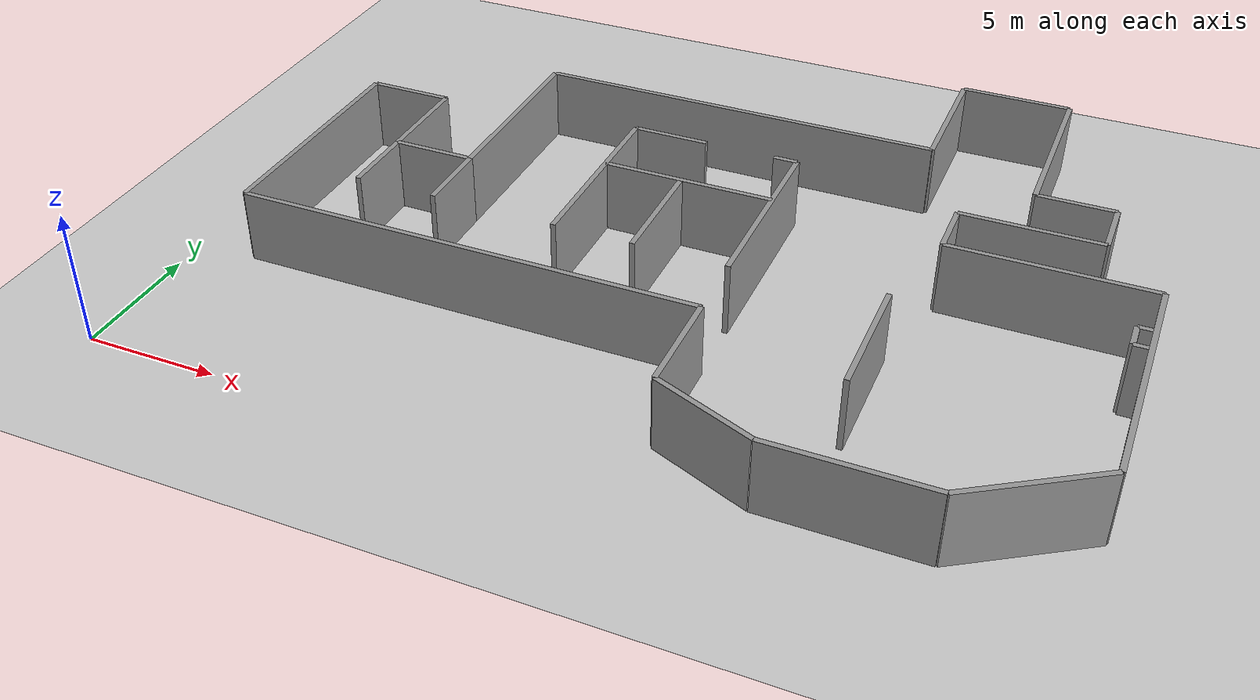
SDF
<?xml version="1.0" ?>

    <!-- this file is auto generated using pedsim_gazebo_plugin pkg -->
    <sdf version="1.5">
      <world name="default">

      <!-- Ground Plane -->

      <include>
        <uri>model://ground_plane</uri>
      </include>

      <include>
        <uri>model://sun</uri>
      </include>

     <model name='grey_wall_1'>
      <static>1</static>
      <link name='link'>

	  <pose frame=''>11.1 6.5  1.4 0 0 0.0</pose>

        <collision name='collision'>
          <geometry>
            <box>

	     <size> 17.6 .2  2.8 </size>

      	   </box>
          </geometry>
          <max_contacts>10</max_contacts>
          <surface>
            <contact>
              <ode/>
            </contact>
            <bounce/>
            <friction>
              <torsional>
                <ode/>
              </torsional>
              <ode/>
            </friction>
          </surface>
        </collision>
        <visual name='visual'>
          <cast_shadows>0</cast_shadows>
          <geometry>
            <box>

	     <size> 17.6 .2  2.8 </size>

      	   </box>
       </geometry>
          <material>
            <script>
              <uri>model://grey_wall/materials/scripts</uri>
              <uri>model://grey_wall/materials/textures</uri>
              <name>vrc/grey_wall</name>
            </script>
          </material>
        </visual>
        <self_collide>0</self_collide>
        <enable_wind>0</enable_wind>
        <kinematic>0</kinematic>
      </link>
    </model>

     <model name='grey_wall_2'>
      <static>1</static>
      <link name='link'>

	  <pose frame=''>19.9 4.5  1.4 0 0 1.57</pose>

        <collision name='collision'>
          <geometry>
            <box>

	     <size> 4.0 .2  2.8 </size>

      	   </box>
          </geometry>
          <max_contacts>10</max_contacts>
          <surface>
            <contact>
              <ode/>
            </contact>
            <bounce/>
            <friction>
              <torsional>
                <ode/>
              </torsional>
              <ode/>
            </friction>
          </surface>
        </collision>
        <visual name='visual'>
          <cast_shadows>0</cast_shadows>
          <geometry>
            <box>

	     <size> 4.0 .2  2.8 </size>

      	   </box>
       </geometry>
          <material>
            <script>
              <uri>model://grey_wall/materials/scripts</uri>
              <uri>model://grey_wall/materials/textures</uri>
              <name>vrc/grey_wall</name>
            </script>
          </material>
        </visual>
        <self_collide>0</self_collide>
        <enable_wind>0</enable_wind>
        <kinematic>0</kinematic>
      </link>
    </model>

     <model name='grey_wall_3'>
      <static>1</static>
      <link name='link'>

	  <pose frame=''>21.75 1.75  1.4 0 0 -0.385157506363</pose>

        <collision name='collision'>
          <geometry>
            <box>

	     <size> 3.99249295554 .2  2.8 </size>

      	   </box>
          </geometry>
          <max_contacts>10</max_contacts>
          <surface>
            <contact>
              <ode/>
            </contact>
            <bounce/>
            <friction>
              <torsional>
                <ode/>
              </torsional>
              <ode/>
            </friction>
          </surface>
        </collision>
        <visual name='visual'>
          <cast_shadows>0</cast_shadows>
          <geometry>
            <box>

	     <size> 3.99249295554 .2  2.8 </size>

      	   </box>
       </geometry>
          <material>
            <script>
              <uri>model://grey_wall/materials/scripts</uri>
              <uri>model://grey_wall/materials/textures</uri>
              <name>vrc/grey_wall</name>
            </script>
          </material>
        </visual>
        <self_collide>0</self_collide>
        <enable_wind>0</enable_wind>
        <kinematic>0</kinematic>
      </link>
    </model>

     <model name='grey_wall_4'>
      <static>1</static>
      <link name='link'>

	  <pose frame=''>26.45 1.0  1.4 0 0 0.0</pose>

        <collision name='collision'>
          <geometry>
            <box>

	     <size> 5.7 .2  2.8 </size>

      	   </box>
          </geometry>
          <max_contacts>10</max_contacts>
          <surface>
            <contact>
              <ode/>
            </contact>
            <bounce/>
            <friction>
              <torsional>
                <ode/>
              </torsional>
              <ode/>
            </friction>
          </surface>
        </collision>
        <visual name='visual'>
          <cast_shadows>0</cast_shadows>
          <geometry>
            <box>

	     <size> 5.7 .2  2.8 </size>

      	   </box>
       </geometry>
          <material>
            <script>
              <uri>model://grey_wall/materials/scripts</uri>
              <uri>model://grey_wall/materials/textures</uri>
              <name>vrc/grey_wall</name>
            </script>
          </material>
        </visual>
        <self_collide>0</self_collide>
        <enable_wind>0</enable_wind>
        <kinematic>0</kinematic>
      </link>
    </model>

     <model name='grey_wall_5'>
      <static>1</static>
      <link name='link'>

	  <pose frame=''>31.45 2.4  1.4 0 0 0.577192213873</pose>

        <collision name='collision'>
          <geometry>
            <box>

	     <size> 5.13127664427 .2  2.8 </size>

      	   </box>
          </geometry>
          <max_contacts>10</max_contacts>
          <surface>
            <contact>
              <ode/>
            </contact>
            <bounce/>
            <friction>
              <torsional>
                <ode/>
              </torsional>
              <ode/>
            </friction>
          </surface>
        </collision>
        <visual name='visual'>
          <cast_shadows>0</cast_shadows>
          <geometry>
            <box>

	     <size> 5.13127664427 .2  2.8 </size>

      	   </box>
       </geometry>
          <material>
            <script>
              <uri>model://grey_wall/materials/scripts</uri>
              <uri>model://grey_wall/materials/textures</uri>
              <name>vrc/grey_wall</name>
            </script>
          </material>
        </visual>
        <self_collide>0</self_collide>
        <enable_wind>0</enable_wind>
        <kinematic>0</kinematic>
      </link>
    </model>

     <model name='grey_wall_6'>
      <static>1</static>
      <link name='link'>

	  <pose frame=''>33.6 8.5  1.4 0 0 1.57</pose>

        <collision name='collision'>
          <geometry>
            <box>

	     <size> 9.4 .2  2.8 </size>

      	   </box>
          </geometry>
          <max_contacts>10</max_contacts>
          <surface>
            <contact>
              <ode/>
            </contact>
            <bounce/>
            <friction>
              <torsional>
                <ode/>
              </torsional>
              <ode/>
            </friction>
          </surface>
        </collision>
        <visual name='visual'>
          <cast_shadows>0</cast_shadows>
          <geometry>
            <box>

	     <size> 9.4 .2  2.8 </size>

      	   </box>
       </geometry>
          <material>
            <script>
              <uri>model://grey_wall/materials/scripts</uri>
              <uri>model://grey_wall/materials/textures</uri>
              <name>vrc/grey_wall</name>
            </script>
          </material>
        </visual>
        <self_collide>0</self_collide>
        <enable_wind>0</enable_wind>
        <kinematic>0</kinematic>
      </link>
    </model>

     <model name='grey_wall_7'>
      <static>1</static>
      <link name='link'>

	  <pose frame=''>29.9 13.2  1.4 0 0 -0.0</pose>

        <collision name='collision'>
          <geometry>
            <box>

	     <size> 7.4 .2  2.8 </size>

      	   </box>
          </geometry>
          <max_contacts>10</max_contacts>
          <surface>
            <contact>
              <ode/>
            </contact>
            <bounce/>
            <friction>
              <torsional>
                <ode/>
              </torsional>
              <ode/>
            </friction>
          </surface>
        </collision>
        <visual name='visual'>
          <cast_shadows>0</cast_shadows>
          <geometry>
            <box>

	     <size> 7.4 .2  2.8 </size>

      	   </box>
       </geometry>
          <material>
            <script>
              <uri>model://grey_wall/materials/scripts</uri>
              <uri>model://grey_wall/materials/textures</uri>
              <name>vrc/grey_wall</name>
            </script>
          </material>
        </visual>
        <self_collide>0</self_collide>
        <enable_wind>0</enable_wind>
        <kinematic>0</kinematic>
      </link>
    </model>

     <model name='grey_wall_8'>
      <static>1</static>
      <link name='link'>

	  <pose frame=''>26.2 14.3  1.4 0 0 1.57</pose>

        <collision name='collision'>
          <geometry>
            <box>

	     <size> 2.2 .2  2.8 </size>

      	   </box>
          </geometry>
          <max_contacts>10</max_contacts>
          <surface>
            <contact>
              <ode/>
            </contact>
            <bounce/>
            <friction>
              <torsional>
                <ode/>
              </torsional>
              <ode/>
            </friction>
          </surface>
        </collision>
        <visual name='visual'>
          <cast_shadows>0</cast_shadows>
          <geometry>
            <box>

	     <size> 2.2 .2  2.8 </size>

      	   </box>
       </geometry>
          <material>
            <script>
              <uri>model://grey_wall/materials/scripts</uri>
              <uri>model://grey_wall/materials/textures</uri>
              <name>vrc/grey_wall</name>
            </script>
          </material>
        </visual>
        <self_collide>0</self_collide>
        <enable_wind>0</enable_wind>
        <kinematic>0</kinematic>
      </link>
    </model>

     <model name='grey_wall_9'>
      <static>1</static>
      <link name='link'>

	  <pose frame=''>28.8 15.4  1.4 0 0 0.0</pose>

        <collision name='collision'>
          <geometry>
            <box>

	     <size> 5.2 .2  2.8 </size>

      	   </box>
          </geometry>
          <max_contacts>10</max_contacts>
          <surface>
            <contact>
              <ode/>
            </contact>
            <bounce/>
            <friction>
              <torsional>
                <ode/>
              </torsional>
              <ode/>
            </friction>
          </surface>
        </collision>
        <visual name='visual'>
          <cast_shadows>0</cast_shadows>
          <geometry>
            <box>

	     <size> 5.2 .2  2.8 </size>

      	   </box>
       </geometry>
          <material>
            <script>
              <uri>model://grey_wall/materials/scripts</uri>
              <uri>model://grey_wall/materials/textures</uri>
              <name>vrc/grey_wall</name>
            </script>
          </material>
        </visual>
        <self_collide>0</self_collide>
        <enable_wind>0</enable_wind>
        <kinematic>0</kinematic>
      </link>
    </model>

     <model name='grey_wall_10'>
      <static>1</static>
      <link name='link'>

	  <pose frame=''>31.4 16.55  1.4 0 0 1.57</pose>

        <collision name='collision'>
          <geometry>
            <box>

	     <size> 2.3 .2  2.8 </size>

      	   </box>
          </geometry>
          <max_contacts>10</max_contacts>
          <surface>
            <contact>
              <ode/>
            </contact>
            <bounce/>
            <friction>
              <torsional>
                <ode/>
              </torsional>
              <ode/>
            </friction>
          </surface>
        </collision>
        <visual name='visual'>
          <cast_shadows>0</cast_shadows>
          <geometry>
            <box>

	     <size> 2.3 .2  2.8 </size>

      	   </box>
       </geometry>
          <material>
            <script>
              <uri>model://grey_wall/materials/scripts</uri>
              <uri>model://grey_wall/materials/textures</uri>
              <name>vrc/grey_wall</name>
            </script>
          </material>
        </visual>
        <self_collide>0</self_collide>
        <enable_wind>0</enable_wind>
        <kinematic>0</kinematic>
      </link>
    </model>

     <model name='grey_wall_11'>
      <static>1</static>
      <link name='link'>

	  <pose frame=''>29.95 17.7  1.4 0 0 -0.0</pose>

        <collision name='collision'>
          <geometry>
            <box>

	     <size> 2.9 .2  2.8 </size>

      	   </box>
          </geometry>
          <max_contacts>10</max_contacts>
          <surface>
            <contact>
              <ode/>
            </contact>
            <bounce/>
            <friction>
              <torsional>
                <ode/>
              </torsional>
              <ode/>
            </friction>
          </surface>
        </collision>
        <visual name='visual'>
          <cast_shadows>0</cast_shadows>
          <geometry>
            <box>

	     <size> 2.9 .2  2.8 </size>

      	   </box>
       </geometry>
          <material>
            <script>
              <uri>model://grey_wall/materials/scripts</uri>
              <uri>model://grey_wall/materials/textures</uri>
              <name>vrc/grey_wall</name>
            </script>
          </material>
        </visual>
        <self_collide>0</self_collide>
        <enable_wind>0</enable_wind>
        <kinematic>0</kinematic>
      </link>
    </model>

     <model name='grey_wall_12'>
      <static>1</static>
      <link name='link'>

	  <pose frame=''>28.5 21.2  1.4 0 0 1.57</pose>

        <collision name='collision'>
          <geometry>
            <box>

	     <size> 7.0 .2  2.8 </size>

      	   </box>
          </geometry>
          <max_contacts>10</max_contacts>
          <surface>
            <contact>
              <ode/>
            </contact>
            <bounce/>
            <friction>
              <torsional>
                <ode/>
              </torsional>
              <ode/>
            </friction>
          </surface>
        </collision>
        <visual name='visual'>
          <cast_shadows>0</cast_shadows>
          <geometry>
            <box>

	     <size> 7.0 .2  2.8 </size>

      	   </box>
       </geometry>
          <material>
            <script>
              <uri>model://grey_wall/materials/scripts</uri>
              <uri>model://grey_wall/materials/textures</uri>
              <name>vrc/grey_wall</name>
            </script>
          </material>
        </visual>
        <self_collide>0</self_collide>
        <enable_wind>0</enable_wind>
        <kinematic>0</kinematic>
      </link>
    </model>

     <model name='grey_wall_13'>
      <static>1</static>
      <link name='link'>

	  <pose frame=''>26.4 24.7  1.4 0 0 -0.0</pose>

        <collision name='collision'>
          <geometry>
            <box>

	     <size> 4.2 .2  2.8 </size>

      	   </box>
          </geometry>
          <max_contacts>10</max_contacts>
          <surface>
            <contact>
              <ode/>
            </contact>
            <bounce/>
            <friction>
              <torsional>
                <ode/>
              </torsional>
              <ode/>
            </friction>
          </surface>
        </collision>
        <visual name='visual'>
          <cast_shadows>0</cast_shadows>
          <geometry>
            <box>

	     <size> 4.2 .2  2.8 </size>

      	   </box>
       </geometry>
          <material>
            <script>
              <uri>model://grey_wall/materials/scripts</uri>
              <uri>model://grey_wall/materials/textures</uri>
              <name>vrc/grey_wall</name>
            </script>
          </material>
        </visual>
        <self_collide>0</self_collide>
        <enable_wind>0</enable_wind>
        <kinematic>0</kinematic>
      </link>
    </model>

     <model name='grey_wall_14'>
      <static>1</static>
      <link name='link'>

	  <pose frame=''>24.3 22.05  1.4 0 0 1.57</pose>

        <collision name='collision'>
          <geometry>
            <box>

	     <size> 5.3 .2  2.8 </size>

      	   </box>
          </geometry>
          <max_contacts>10</max_contacts>
          <surface>
            <contact>
              <ode/>
            </contact>
            <bounce/>
            <friction>
              <torsional>
                <ode/>
              </torsional>
              <ode/>
            </friction>
          </surface>
        </collision>
        <visual name='visual'>
          <cast_shadows>0</cast_shadows>
          <geometry>
            <box>

	     <size> 5.3 .2  2.8 </size>

      	   </box>
       </geometry>
          <material>
            <script>
              <uri>model://grey_wall/materials/scripts</uri>
              <uri>model://grey_wall/materials/textures</uri>
              <name>vrc/grey_wall</name>
            </script>
          </material>
        </visual>
        <self_collide>0</self_collide>
        <enable_wind>0</enable_wind>
        <kinematic>0</kinematic>
      </link>
    </model>

     <model name='grey_wall_15'>
      <static>1</static>
      <link name='link'>

	  <pose frame=''>16.45 19.4  1.4 0 0 -0.0</pose>

        <collision name='collision'>
          <geometry>
            <box>

	     <size> 15.7 .2  2.8 </size>

      	   </box>
          </geometry>
          <max_contacts>10</max_contacts>
          <surface>
            <contact>
              <ode/>
            </contact>
            <bounce/>
            <friction>
              <torsional>
                <ode/>
              </torsional>
              <ode/>
            </friction>
          </surface>
        </collision>
        <visual name='visual'>
          <cast_shadows>0</cast_shadows>
          <geometry>
            <box>

	     <size> 15.7 .2  2.8 </size>

      	   </box>
       </geometry>
          <material>
            <script>
              <uri>model://grey_wall/materials/scripts</uri>
              <uri>model://grey_wall/materials/textures</uri>
              <name>vrc/grey_wall</name>
            </script>
          </material>
        </visual>
        <self_collide>0</self_collide>
        <enable_wind>0</enable_wind>
        <kinematic>0</kinematic>
      </link>
    </model>

     <model name='grey_wall_16'>
      <static>1</static>
      <link name='link'>

	  <pose frame=''>8.6 15.65  1.4 0 0 1.57</pose>

        <collision name='collision'>
          <geometry>
            <box>

	     <size> 7.5 .2  2.8 </size>

      	   </box>
          </geometry>
          <max_contacts>10</max_contacts>
          <surface>
            <contact>
              <ode/>
            </contact>
            <bounce/>
            <friction>
              <torsional>
                <ode/>
              </torsional>
              <ode/>
            </friction>
          </surface>
        </collision>
        <visual name='visual'>
          <cast_shadows>0</cast_shadows>
          <geometry>
            <box>

	     <size> 7.5 .2  2.8 </size>

      	   </box>
       </geometry>
          <material>
            <script>
              <uri>model://grey_wall/materials/scripts</uri>
              <uri>model://grey_wall/materials/textures</uri>
              <name>vrc/grey_wall</name>
            </script>
          </material>
        </visual>
        <self_collide>0</self_collide>
        <enable_wind>0</enable_wind>
        <kinematic>0</kinematic>
      </link>
    </model>

     <model name='grey_wall_17'>
      <static>1</static>
      <link name='link'>

	  <pose frame=''>7.05 11.9  1.4 0 0 -0.0</pose>

        <collision name='collision'>
          <geometry>
            <box>

	     <size> 3.1 .2  2.8 </size>

      	   </box>
          </geometry>
          <max_contacts>10</max_contacts>
          <surface>
            <contact>
              <ode/>
            </contact>
            <bounce/>
            <friction>
              <torsional>
                <ode/>
              </torsional>
              <ode/>
            </friction>
          </surface>
        </collision>
        <visual name='visual'>
          <cast_shadows>0</cast_shadows>
          <geometry>
            <box>

	     <size> 3.1 .2  2.8 </size>

      	   </box>
       </geometry>
          <material>
            <script>
              <uri>model://grey_wall/materials/scripts</uri>
              <uri>model://grey_wall/materials/textures</uri>
              <name>vrc/grey_wall</name>
            </script>
          </material>
        </visual>
        <self_collide>0</self_collide>
        <enable_wind>0</enable_wind>
        <kinematic>0</kinematic>
      </link>
    </model>

     <model name='grey_wall_18'>
      <static>1</static>
      <link name='link'>

	  <pose frame=''>5.5 13.8  1.4 0 0 1.57</pose>

        <collision name='collision'>
          <geometry>
            <box>

	     <size> 3.8 .2  2.8 </size>

      	   </box>
          </geometry>
          <max_contacts>10</max_contacts>
          <surface>
            <contact>
              <ode/>
            </contact>
            <bounce/>
            <friction>
              <torsional>
                <ode/>
              </torsional>
              <ode/>
            </friction>
          </surface>
        </collision>
        <visual name='visual'>
          <cast_shadows>0</cast_shadows>
          <geometry>
            <box>

	     <size> 3.8 .2  2.8 </size>

      	   </box>
       </geometry>
          <material>
            <script>
              <uri>model://grey_wall/materials/scripts</uri>
              <uri>model://grey_wall/materials/textures</uri>
              <name>vrc/grey_wall</name>
            </script>
          </material>
        </visual>
        <self_collide>0</self_collide>
        <enable_wind>0</enable_wind>
        <kinematic>0</kinematic>
      </link>
    </model>

     <model name='grey_wall_19'>
      <static>1</static>
      <link name='link'>

	  <pose frame=''>3.9 15.7  1.4 0 0 -0.0</pose>

        <collision name='collision'>
          <geometry>
            <box>

	     <size> 3.2 .2  2.8 </size>

      	   </box>
          </geometry>
          <max_contacts>10</max_contacts>
          <surface>
            <contact>
              <ode/>
            </contact>
            <bounce/>
            <friction>
              <torsional>
                <ode/>
              </torsional>
              <ode/>
            </friction>
          </surface>
        </collision>
        <visual name='visual'>
          <cast_shadows>0</cast_shadows>
          <geometry>
            <box>

	     <size> 3.2 .2  2.8 </size>

      	   </box>
       </geometry>
          <material>
            <script>
              <uri>model://grey_wall/materials/scripts</uri>
              <uri>model://grey_wall/materials/textures</uri>
              <name>vrc/grey_wall</name>
            </script>
          </material>
        </visual>
        <self_collide>0</self_collide>
        <enable_wind>0</enable_wind>
        <kinematic>0</kinematic>
      </link>
    </model>

     <model name='grey_wall_20'>
      <static>1</static>
      <link name='link'>

	  <pose frame=''>2.3 11.1  1.4 0 0 1.57</pose>

        <collision name='collision'>
          <geometry>
            <box>

	     <size> 9.2 .2  2.8 </size>

      	   </box>
          </geometry>
          <max_contacts>10</max_contacts>
          <surface>
            <contact>
              <ode/>
            </contact>
            <bounce/>
            <friction>
              <torsional>
                <ode/>
              </torsional>
              <ode/>
            </friction>
          </surface>
        </collision>
        <visual name='visual'>
          <cast_shadows>0</cast_shadows>
          <geometry>
            <box>

	     <size> 9.2 .2  2.8 </size>

      	   </box>
       </geometry>
          <material>
            <script>
              <uri>model://grey_wall/materials/scripts</uri>
              <uri>model://grey_wall/materials/textures</uri>
              <name>vrc/grey_wall</name>
            </script>
          </material>
        </visual>
        <self_collide>0</self_collide>
        <enable_wind>0</enable_wind>
        <kinematic>0</kinematic>
      </link>
    </model>

     <model name='grey_wall_21'>
      <static>1</static>
      <link name='link'>

	  <pose frame=''>5.5 10.45  1.4 0 0 1.57</pose>

        <collision name='collision'>
          <geometry>
            <box>

	     <size> 2.9 .2  2.8 </size>

      	   </box>
          </geometry>
          <max_contacts>10</max_contacts>
          <surface>
            <contact>
              <ode/>
            </contact>
            <bounce/>
            <friction>
              <torsional>
                <ode/>
              </torsional>
              <ode/>
            </friction>
          </surface>
        </collision>
        <visual name='visual'>
          <cast_shadows>0</cast_shadows>
          <geometry>
            <box>

	     <size> 2.9 .2  2.8 </size>

      	   </box>
       </geometry>
          <material>
            <script>
              <uri>model://grey_wall/materials/scripts</uri>
              <uri>model://grey_wall/materials/textures</uri>
              <name>vrc/grey_wall</name>
            </script>
          </material>
        </visual>
        <self_collide>0</self_collide>
        <enable_wind>0</enable_wind>
        <kinematic>0</kinematic>
      </link>
    </model>

     <model name='grey_wall_22'>
      <static>1</static>
      <link name='link'>

	  <pose frame=''>8.6 10.45  1.4 0 0 1.57</pose>

        <collision name='collision'>
          <geometry>
            <box>

	     <size> 2.9 .2  2.8 </size>

      	   </box>
          </geometry>
          <max_contacts>10</max_contacts>
          <surface>
            <contact>
              <ode/>
            </contact>
            <bounce/>
            <friction>
              <torsional>
                <ode/>
              </torsional>
              <ode/>
            </friction>
          </surface>
        </collision>
        <visual name='visual'>
          <cast_shadows>0</cast_shadows>
          <geometry>
            <box>

	     <size> 2.9 .2  2.8 </size>

      	   </box>
       </geometry>
          <material>
            <script>
              <uri>model://grey_wall/materials/scripts</uri>
              <uri>model://grey_wall/materials/textures</uri>
              <name>vrc/grey_wall</name>
            </script>
          </material>
        </visual>
        <self_collide>0</self_collide>
        <enable_wind>0</enable_wind>
        <kinematic>0</kinematic>
      </link>
    </model>

     <model name='grey_wall_23'>
      <static>1</static>
      <link name='link'>

	  <pose frame=''>14.85 16.5  1.4 0 0 0.0</pose>

        <collision name='collision'>
          <geometry>
            <box>

	     <size> 2.9 .2  2.8 </size>

      	   </box>
          </geometry>
          <max_contacts>10</max_contacts>
          <surface>
            <contact>
              <ode/>
            </contact>
            <bounce/>
            <friction>
              <torsional>
                <ode/>
              </torsional>
              <ode/>
            </friction>
          </surface>
        </collision>
        <visual name='visual'>
          <cast_shadows>0</cast_shadows>
          <geometry>
            <box>

	     <size> 2.9 .2  2.8 </size>

      	   </box>
       </geometry>
          <material>
            <script>
              <uri>model://grey_wall/materials/scripts</uri>
              <uri>model://grey_wall/materials/textures</uri>
              <name>vrc/grey_wall</name>
            </script>
          </material>
        </visual>
        <self_collide>0</self_collide>
        <enable_wind>0</enable_wind>
        <kinematic>0</kinematic>
      </link>
    </model>

     <model name='grey_wall_24'>
      <static>1</static>
      <link name='link'>

	  <pose frame=''>13.4 12.75  1.4 0 0 1.57</pose>

        <collision name='collision'>
          <geometry>
            <box>

	     <size> 7.5 .2  2.8 </size>

      	   </box>
          </geometry>
          <max_contacts>10</max_contacts>
          <surface>
            <contact>
              <ode/>
            </contact>
            <bounce/>
            <friction>
              <torsional>
                <ode/>
              </torsional>
              <ode/>
            </friction>
          </surface>
        </collision>
        <visual name='visual'>
          <cast_shadows>0</cast_shadows>
          <geometry>
            <box>

	     <size> 7.5 .2  2.8 </size>

      	   </box>
       </geometry>
          <material>
            <script>
              <uri>model://grey_wall/materials/scripts</uri>
              <uri>model://grey_wall/materials/textures</uri>
              <name>vrc/grey_wall</name>
            </script>
          </material>
        </visual>
        <self_collide>0</self_collide>
        <enable_wind>0</enable_wind>
        <kinematic>0</kinematic>
      </link>
    </model>

     <model name='grey_wall_25'>
      <static>1</static>
      <link name='link'>

	  <pose frame=''>19.45 16.5  1.4 0 0 0.0</pose>

        <collision name='collision'>
          <geometry>
            <box>

	     <size> 0.9 .2  2.8 </size>

      	   </box>
          </geometry>
          <max_contacts>10</max_contacts>
          <surface>
            <contact>
              <ode/>
            </contact>
            <bounce/>
            <friction>
              <torsional>
                <ode/>
              </torsional>
              <ode/>
            </friction>
          </surface>
        </collision>
        <visual name='visual'>
          <cast_shadows>0</cast_shadows>
          <geometry>
            <box>

	     <size> 0.9 .2  2.8 </size>

      	   </box>
       </geometry>
          <material>
            <script>
              <uri>model://grey_wall/materials/scripts</uri>
              <uri>model://grey_wall/materials/textures</uri>
              <name>vrc/grey_wall</name>
            </script>
          </material>
        </visual>
        <self_collide>0</self_collide>
        <enable_wind>0</enable_wind>
        <kinematic>0</kinematic>
      </link>
    </model>

     <model name='grey_wall_26'>
      <static>1</static>
      <link name='link'>

	  <pose frame=''>19.9 12.75  1.4 0 0 1.57</pose>

        <collision name='collision'>
          <geometry>
            <box>

	     <size> 7.5 .2  2.8 </size>

      	   </box>
          </geometry>
          <max_contacts>10</max_contacts>
          <surface>
            <contact>
              <ode/>
            </contact>
            <bounce/>
            <friction>
              <torsional>
                <ode/>
              </torsional>
              <ode/>
            </friction>
          </surface>
        </collision>
        <visual name='visual'>
          <cast_shadows>0</cast_shadows>
          <geometry>
            <box>

	     <size> 7.5 .2  2.8 </size>

      	   </box>
       </geometry>
          <material>
            <script>
              <uri>model://grey_wall/materials/scripts</uri>
              <uri>model://grey_wall/materials/textures</uri>
              <name>vrc/grey_wall</name>
            </script>
          </material>
        </visual>
        <self_collide>0</self_collide>
        <enable_wind>0</enable_wind>
        <kinematic>0</kinematic>
      </link>
    </model>

     <model name='grey_wall_27'>
      <static>1</static>
      <link name='link'>

	  <pose frame=''>16.65 13.6  1.4 0 0 0.0</pose>

        <collision name='collision'>
          <geometry>
            <box>

	     <size> 6.5 .2  2.8 </size>

      	   </box>
          </geometry>
          <max_contacts>10</max_contacts>
          <surface>
            <contact>
              <ode/>
            </contact>
            <bounce/>
            <friction>
              <torsional>
                <ode/>
              </torsional>
              <ode/>
            </friction>
          </surface>
        </collision>
        <visual name='visual'>
          <cast_shadows>0</cast_shadows>
          <geometry>
            <box>

	     <size> 6.5 .2  2.8 </size>

      	   </box>
       </geometry>
          <material>
            <script>
              <uri>model://grey_wall/materials/scripts</uri>
              <uri>model://grey_wall/materials/textures</uri>
              <name>vrc/grey_wall</name>
            </script>
          </material>
        </visual>
        <self_collide>0</self_collide>
        <enable_wind>0</enable_wind>
        <kinematic>0</kinematic>
      </link>
    </model>

     <model name='grey_wall_28'>
      <static>1</static>
      <link name='link'>

	  <pose frame=''>16.4 11.3  1.4 0 0 1.57</pose>

        <collision name='collision'>
          <geometry>
            <box>

	     <size> 4.6 .2  2.8 </size>

      	   </box>
          </geometry>
          <max_contacts>10</max_contacts>
          <surface>
            <contact>
              <ode/>
            </contact>
            <bounce/>
            <friction>
              <torsional>
                <ode/>
              </torsional>
              <ode/>
            </friction>
          </surface>
        </collision>
        <visual name='visual'>
          <cast_shadows>0</cast_shadows>
          <geometry>
            <box>

	     <size> 4.6 .2  2.8 </size>

      	   </box>
       </geometry>
          <material>
            <script>
              <uri>model://grey_wall/materials/scripts</uri>
              <uri>model://grey_wall/materials/textures</uri>
              <name>vrc/grey_wall</name>
            </script>
          </material>
        </visual>
        <self_collide>0</self_collide>
        <enable_wind>0</enable_wind>
        <kinematic>0</kinematic>
      </link>
    </model>

     <model name='grey_wall_29'>
      <static>1</static>
      <link name='link'>

	  <pose frame=''>25.3 7.15  1.4 0 0 1.57</pose>

        <collision name='collision'>
          <geometry>
            <box>

	     <size> 4.9 .2  2.8 </size>

      	   </box>
          </geometry>
          <max_contacts>10</max_contacts>
          <surface>
            <contact>
              <ode/>
            </contact>
            <bounce/>
            <friction>
              <torsional>
                <ode/>
              </torsional>
              <ode/>
            </friction>
          </surface>
        </collision>
        <visual name='visual'>
          <cast_shadows>0</cast_shadows>
          <geometry>
            <box>

	     <size> 4.9 .2  2.8 </size>

      	   </box>
       </geometry>
          <material>
            <script>
              <uri>model://grey_wall/materials/scripts</uri>
              <uri>model://grey_wall/materials/textures</uri>
              <name>vrc/grey_wall</name>
            </script>
          </material>
        </visual>
        <self_collide>0</self_collide>
        <enable_wind>0</enable_wind>
        <kinematic>0</kinematic>
      </link>
    </model>

     <model name='grey_wall_30'>
      <static>1</static>
      <link name='link'>

	  <pose frame=''>33.3 10.0  1.4 0 0 -0.0</pose>

        <collision name='collision'>
          <geometry>
            <box>

	     <size> 0.6 .2  2.8 </size>

      	   </box>
          </geometry>
          <max_contacts>10</max_contacts>
          <surface>
            <contact>
              <ode/>
            </contact>
            <bounce/>
            <friction>
              <torsional>
                <ode/>
              </torsional>
              <ode/>
            </friction>
          </surface>
        </collision>
        <visual name='visual'>
          <cast_shadows>0</cast_shadows>
          <geometry>
            <box>

	     <size> 0.6 .2  2.8 </size>

      	   </box>
       </geometry>
          <material>
            <script>
              <uri>model://grey_wall/materials/scripts</uri>
              <uri>model://grey_wall/materials/textures</uri>
              <name>vrc/grey_wall</name>
            </script>
          </material>
        </visual>
        <self_collide>0</self_collide>
        <enable_wind>0</enable_wind>
        <kinematic>0</kinematic>
      </link>
    </model>

     <model name='grey_wall_31'>
      <static>1</static>
      <link name='link'>

	  <pose frame=''>33.0 10.5  1.4 0 0 1.57</pose>

        <collision name='collision'>
          <geometry>
            <box>

	     <size> 1.0 .2  2.8 </size>

      	   </box>
          </geometry>
          <max_contacts>10</max_contacts>
          <surface>
            <contact>
              <ode/>
            </contact>
            <bounce/>
            <friction>
              <torsional>
                <ode/>
              </torsional>
              <ode/>
            </friction>
          </surface>
        </collision>
        <visual name='visual'>
          <cast_shadows>0</cast_shadows>
          <geometry>
            <box>

	     <size> 1.0 .2  2.8 </size>

      	   </box>
       </geometry>
          <material>
            <script>
              <uri>model://grey_wall/materials/scripts</uri>
              <uri>model://grey_wall/materials/textures</uri>
              <name>vrc/grey_wall</name>
            </script>
          </material>
        </visual>
        <self_collide>0</self_collide>
        <enable_wind>0</enable_wind>
        <kinematic>0</kinematic>
      </link>
    </model>

     <model name='grey_wall_32'>
      <static>1</static>
      <link name='link'>

	  <pose frame=''>33.3 11.0  1.4 0 0 0.0</pose>

        <collision name='collision'>
          <geometry>
            <box>

	     <size> 0.6 .2  2.8 </size>

      	   </box>
          </geometry>
          <max_contacts>10</max_contacts>
          <surface>
            <contact>
              <ode/>
            </contact>
            <bounce/>
            <friction>
              <torsional>
                <ode/>
              </torsional>
              <ode/>
            </friction>
          </surface>
        </collision>
        <visual name='visual'>
          <cast_shadows>0</cast_shadows>
          <geometry>
            <box>

	     <size> 0.6 .2  2.8 </size>

      	   </box>
       </geometry>
          <material>
            <script>
              <uri>model://grey_wall/materials/scripts</uri>
              <uri>model://grey_wall/materials/textures</uri>
              <name>vrc/grey_wall</name>
            </script>
          </material>
        </visual>
        <self_collide>0</self_collide>
        <enable_wind>0</enable_wind>
        <kinematic>0</kinematic>
      </link>
    </model>

            <plugin name="ActorPosesPlugin" filename="libActorPosesPlugin.so">
        </plugin>

      </world>
    </sdf>
